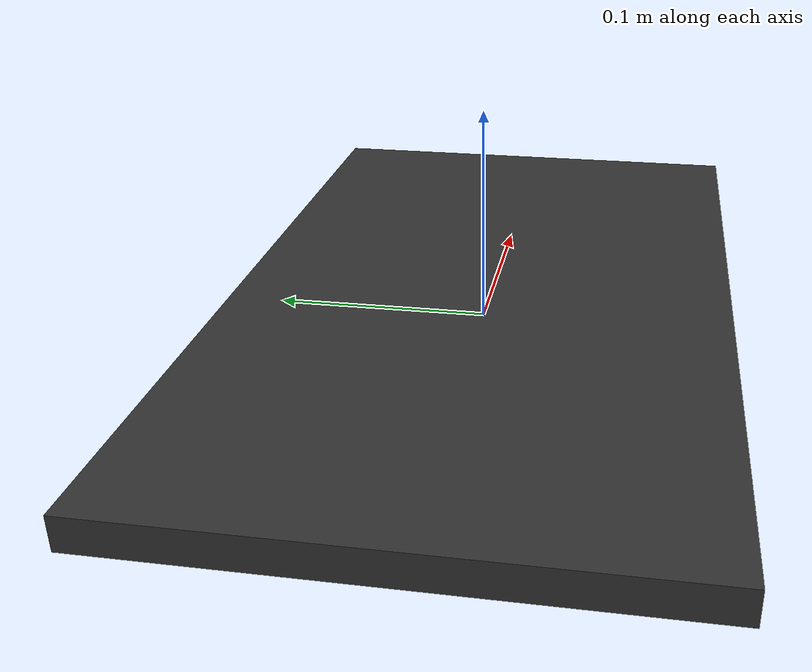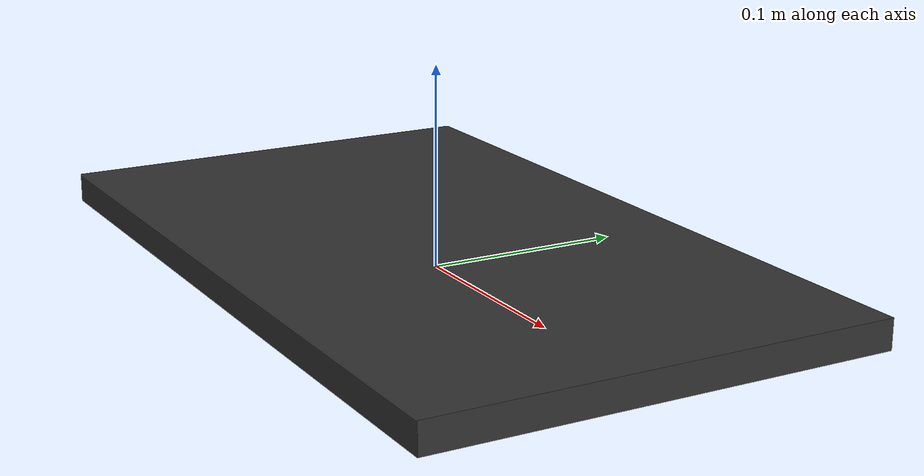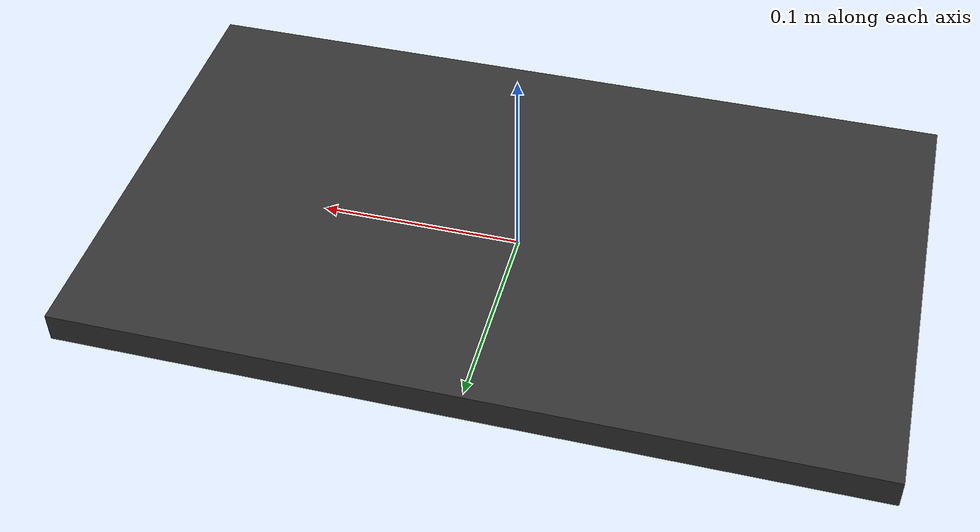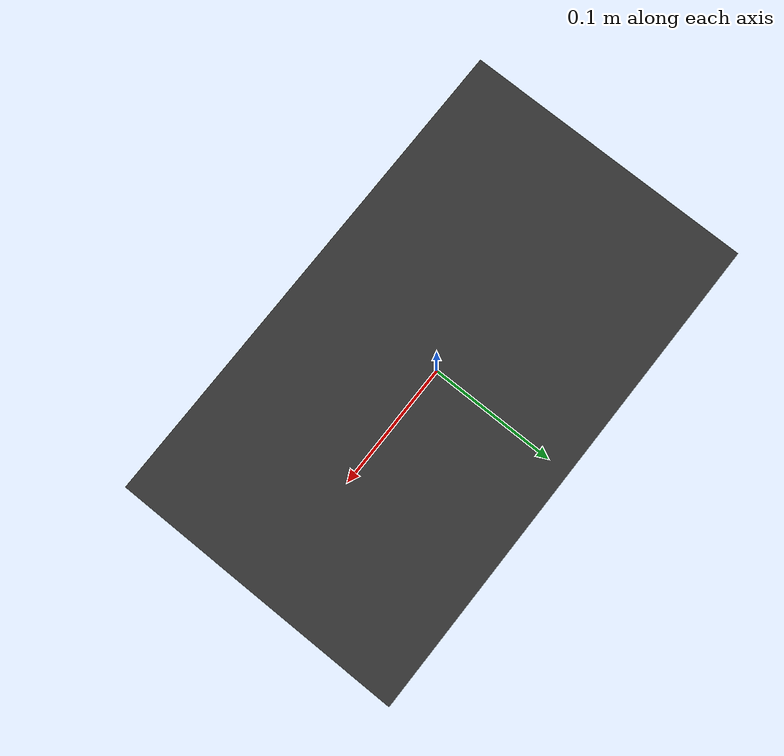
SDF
<?xml version="1.0"?>
<sdf version="1.7">
  <model name="bin_model">
    <!--
    Axes:
      +X - Pointing towards front (slope)
      +Y - Pointing to left side
      +Z - Up
    Origin:
      (0, 0, 0) at the center bottom of the bin
    -->
    <link name="bin_base">
      <inertial>
        <mass>18.70</mass>
        <inertia>
          <ixx>0.79</ixx>
          <ixy>0</ixy>
          <ixz>0</ixz>
          <iyy>0.53</iyy>
          <iyz>0</iyz>
          <izz>1.2</izz>
        </inertia>
      </inertial>
      <visual name="bottom">
        <pose>0.0 0.0 0.0075 0 0 0</pose>
        <geometry>
          <box>
            <size>0.39 0.23 0.015</size>
          </box>
        </geometry>
        <material>
          <diffuse>0.2 0.2 0.2 1.0</diffuse>
        </material>
      </visual>
      <collision name="bottom">
        <pose>0.0 0.0 0.0075 0 0 0</pose>
        <geometry>
          <box>
            <size>0.39 0.23 0.015</size>
          </box>
        </geometry>
        <drake:proximity_properties>
          <drake:compliant_hydroelastic/>
          <drake:hydroelastic_modulus>1.0e6</drake:hydroelastic_modulus>
        </drake:proximity_properties>
      </collision>
    </link>
    <frame name="bin_front_top_center">
      <pose relative_to="bin_base">0.22 0 0.21 0 0 0</pose>
    </frame>
  </model>
</sdf>
